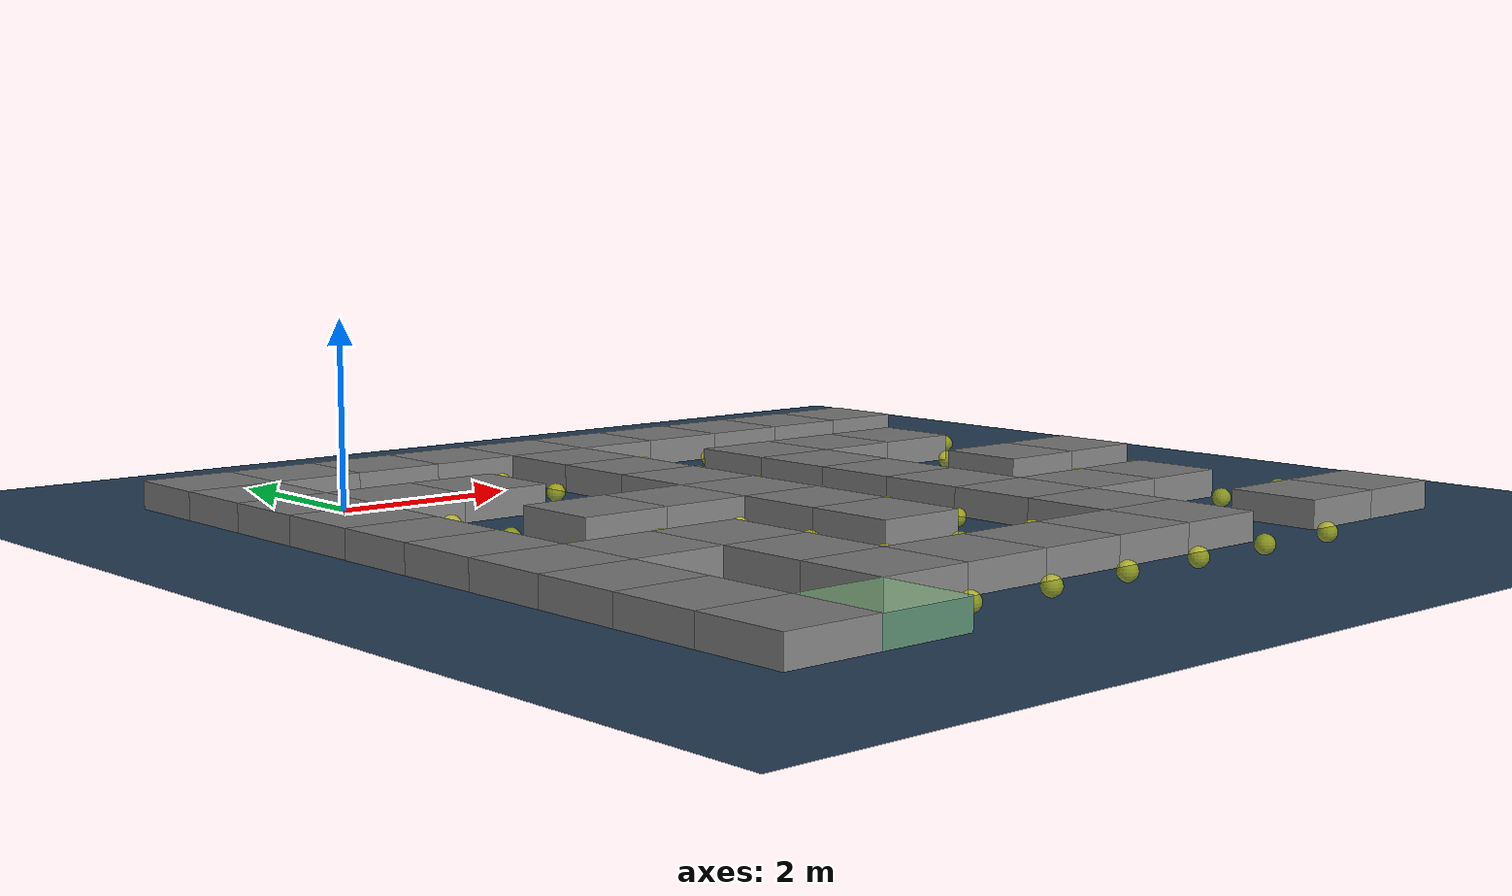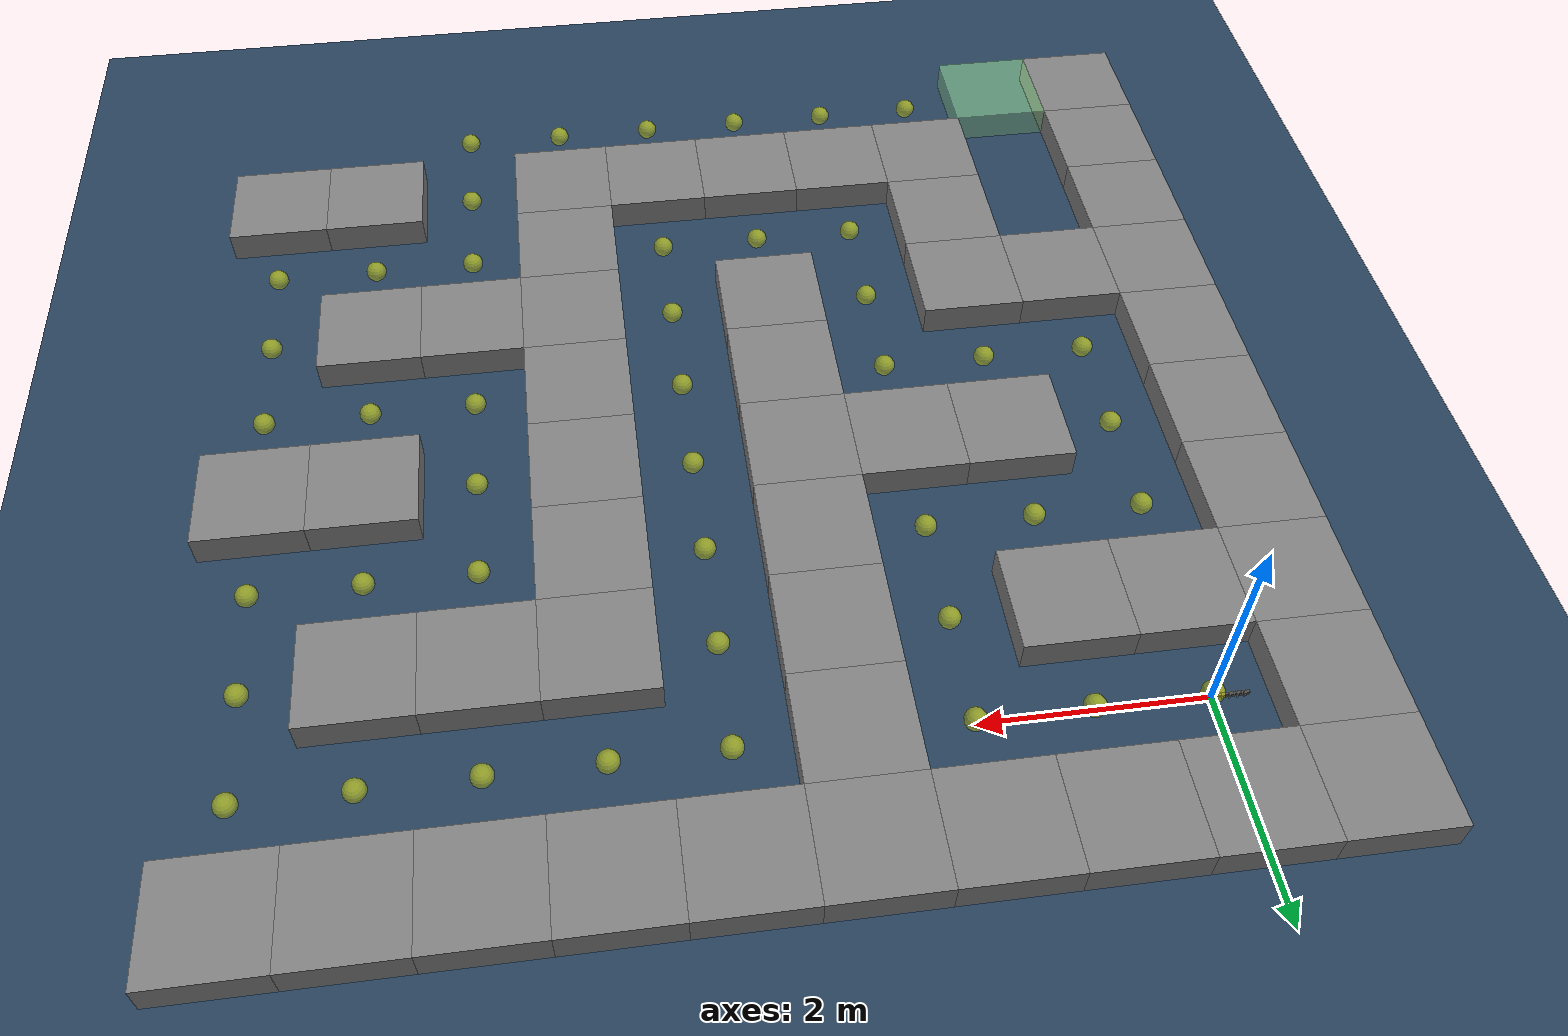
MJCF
<?xml version='1.0' encoding='utf-8'?>
<mujoco model="snake scene">
  <include file="snake.xml" />

  <statistic center="0.3 0 0.4" extent="0.8" />

  <visual>
    <headlight diffuse="0.6 0.6 0.6" ambient="0.1 0.1 0.1" specular="0 0 0" />
    <rgba haze="0.15 0.25 0.35 1" />
    <global azimuth="120" elevation="-20" />
  </visual>

  <asset>
    <texture type="skybox" builtin="gradient" rgb1="0.3 0.5 0.7" rgb2="0 0 0" width="512" height="3072" />
    <texture type="2d" name="groundplane" builtin="checker" mark="edge" rgb1="0.2 0.3 0.4" rgb2="0.1 0.2 0.3" markrgb="0.8 0.8 0.8" width="300" height="300" />
    <material name="groundplane" texture="groundplane" texuniform="true" texrepeat="5 5" reflectance="0.2" />
  </asset>

  <worldbody>
    <light pos="0 0 1.5" dir="0 0 -1" directional="true" />
    <geom name="floor" size="0 0 0.05" type="plane" material="groundplane" />
  <body name="box_0_0" pos="-1.0 1.0 0.15"><geom name="geom_0_0" type="box" size="0.5 0.5 0.15" rgba="0.5 0.5 0.5 1" /></body><body name="box_0_1" pos="0.0 1.0 0.15"><geom name="geom_0_1" type="box" size="0.5 0.5 0.15" rgba="0.5 0.5 0.5 1" /></body><body name="box_0_2" pos="1.0 1.0 0.15"><geom name="geom_0_2" type="box" size="0.5 0.5 0.15" rgba="0.5 0.5 0.5 1" /></body><body name="box_0_3" pos="2.0 1.0 0.15"><geom name="geom_0_3" type="box" size="0.5 0.5 0.15" rgba="0.5 0.5 0.5 1" /></body><body name="box_0_4" pos="3.0 1.0 0.15"><geom name="geom_0_4" type="box" size="0.5 0.5 0.15" rgba="0.5 0.5 0.5 1" /></body><body name="box_0_5" pos="4.0 1.0 0.15"><geom name="geom_0_5" type="box" size="0.5 0.5 0.15" rgba="0.5 0.5 0.5 1" /></body><body name="box_0_6" pos="5.0 1.0 0.15"><geom name="geom_0_6" type="box" size="0.5 0.5 0.15" rgba="0.5 0.5 0.5 1" /></body><body name="box_0_7" pos="6.0 1.0 0.15"><geom name="geom_0_7" type="box" size="0.5 0.5 0.15" rgba="0.5 0.5 0.5 1" /></body><body name="box_0_8" pos="7.0 1.0 0.15"><geom name="geom_0_8" type="box" size="0.5 0.5 0.15" rgba="0.5 0.5 0.5 1" /></body><body name="box_0_9" pos="8.0 1.0 0.15"><geom name="geom_0_9" type="box" size="0.5 0.5 0.15" rgba="0.5 0.5 0.5 1" /></body><body name="box_1_0" pos="-1.0 -0.0 0.15"><geom name="geom_1_0" type="box" size="0.5 0.5 0.15" rgba="0.5 0.5 0.5 1" /></body><body name="box_1_4" pos="3.0 -0.0 0.15"><geom name="geom_1_4" type="box" size="0.5 0.5 0.15" rgba="0.5 0.5 0.5 1" /></body><body name="box_2_0" pos="-1.0 -1.0 0.15"><geom name="geom_2_0" type="box" size="0.5 0.5 0.15" rgba="0.5 0.5 0.5 1" /></body><body name="box_2_1" pos="0.0 -1.0 0.15"><geom name="geom_2_1" type="box" size="0.5 0.5 0.15" rgba="0.5 0.5 0.5 1" /></body><body name="box_2_2" pos="1.0 -1.0 0.15"><geom name="geom_2_2" type="box" size="0.5 0.5 0.15" rgba="0.5 0.5 0.5 1" /></body><body name="box_2_4" pos="3.0 -1.0 0.15"><geom name="geom_2_4" type="box" size="0.5 0.5 0.15" rgba="0.5 0.5 0.5 1" /></body><body name="box_2_6" pos="5.0 -1.0 0.15"><geom name="geom_2_6" type="box" size="0.5 0.5 0.15" rgba="0.5 0.5 0.5 1" /></body><body name="box_2_7" pos="6.0 -1.0 0.15"><geom name="geom_2_7" type="box" size="0.5 0.5 0.15" rgba="0.5 0.5 0.5 1" /></body><body name="box_2_8" pos="7.0 -1.0 0.15"><geom name="geom_2_8" type="box" size="0.5 0.5 0.15" rgba="0.5 0.5 0.5 1" /></body><body name="box_3_0" pos="-1.0 -2.0 0.15"><geom name="geom_3_0" type="box" size="0.5 0.5 0.15" rgba="0.5 0.5 0.5 1" /></body><body name="box_3_4" pos="3.0 -2.0 0.15"><geom name="geom_3_4" type="box" size="0.5 0.5 0.15" rgba="0.5 0.5 0.5 1" /></body><body name="box_3_6" pos="5.0 -2.0 0.15"><geom name="geom_3_6" type="box" size="0.5 0.5 0.15" rgba="0.5 0.5 0.5 1" /></body><body name="box_4_0" pos="-1.0 -3.0 0.15"><geom name="geom_4_0" type="box" size="0.5 0.5 0.15" rgba="0.5 0.5 0.5 1" /></body><body name="box_4_2" pos="1.0 -3.0 0.15"><geom name="geom_4_2" type="box" size="0.5 0.5 0.15" rgba="0.5 0.5 0.5 1" /></body><body name="box_4_3" pos="2.0 -3.0 0.15"><geom name="geom_4_3" type="box" size="0.5 0.5 0.15" rgba="0.5 0.5 0.5 1" /></body><body name="box_4_4" pos="3.0 -3.0 0.15"><geom name="geom_4_4" type="box" size="0.5 0.5 0.15" rgba="0.5 0.5 0.5 1" /></body><body name="box_4_6" pos="5.0 -3.0 0.15"><geom name="geom_4_6" type="box" size="0.5 0.5 0.15" rgba="0.5 0.5 0.5 1" /></body><body name="box_4_8" pos="7.0 -3.0 0.15"><geom name="geom_4_8" type="box" size="0.5 0.5 0.15" rgba="0.5 0.5 0.5 1" /></body><body name="box_4_9" pos="8.0 -3.0 0.15"><geom name="geom_4_9" type="box" size="0.5 0.5 0.15" rgba="0.5 0.5 0.5 1" /></body><body name="box_5_0" pos="-1.0 -4.0 0.15"><geom name="geom_5_0" type="box" size="0.5 0.5 0.15" rgba="0.5 0.5 0.5 1" /></body><body name="box_5_4" pos="3.0 -4.0 0.15"><geom name="geom_5_4" type="box" size="0.5 0.5 0.15" rgba="0.5 0.5 0.5 1" /></body><body name="box_5_6" pos="5.0 -4.0 0.15"><geom name="geom_5_6" type="box" size="0.5 0.5 0.15" rgba="0.5 0.5 0.5 1" /></body><body name="box_6_0" pos="-1.0 -5.0 0.15"><geom name="geom_6_0" type="box" size="0.5 0.5 0.15" rgba="0.5 0.5 0.5 1" /></body><body name="box_6_1" pos="0.0 -5.0 0.15"><geom name="geom_6_1" type="box" size="0.5 0.5 0.15" rgba="0.5 0.5 0.5 1" /></body><body name="box_6_2" pos="1.0 -5.0 0.15"><geom name="geom_6_2" type="box" size="0.5 0.5 0.15" rgba="0.5 0.5 0.5 1" /></body><body name="box_6_4" pos="3.0 -5.0 0.15"><geom name="geom_6_4" type="box" size="0.5 0.5 0.15" rgba="0.5 0.5 0.5 1" /></body><body name="box_6_6" pos="5.0 -5.0 0.15"><geom name="geom_6_6" type="box" size="0.5 0.5 0.15" rgba="0.5 0.5 0.5 1" /></body><body name="box_6_7" pos="6.0 -5.0 0.15"><geom name="geom_6_7" type="box" size="0.5 0.5 0.15" rgba="0.5 0.5 0.5 1" /></body><body name="box_6_8" pos="7.0 -5.0 0.15"><geom name="geom_6_8" type="box" size="0.5 0.5 0.15" rgba="0.5 0.5 0.5 1" /></body><body name="box_7_0" pos="-1.0 -6.0 0.15"><geom name="geom_7_0" type="box" size="0.5 0.5 0.15" rgba="0.5 0.5 0.5 1" /></body><body name="box_7_2" pos="1.0 -6.0 0.15"><geom name="geom_7_2" type="box" size="0.5 0.5 0.15" rgba="0.5 0.5 0.5 1" /></body><body name="box_7_6" pos="5.0 -6.0 0.15"><geom name="geom_7_6" type="box" size="0.5 0.5 0.15" rgba="0.5 0.5 0.5 1" /></body><body name="box_8_0" pos="-1.0 -7.0 0.15"><geom name="geom_8_0" type="box" size="0.5 0.5 0.15" rgba="0.5 0.5 0.5 1" /></body><body name="box_8_2" pos="1.0 -7.0 0.15"><geom name="geom_8_2" type="box" size="0.5 0.5 0.15" rgba="0.5 0.5 0.5 1" /></body><body name="box_8_3" pos="2.0 -7.0 0.15"><geom name="geom_8_3" type="box" size="0.5 0.5 0.15" rgba="0.5 0.5 0.5 1" /></body><body name="box_8_4" pos="3.0 -7.0 0.15"><geom name="geom_8_4" type="box" size="0.5 0.5 0.15" rgba="0.5 0.5 0.5 1" /></body><body name="box_8_5" pos="4.0 -7.0 0.15"><geom name="geom_8_5" type="box" size="0.5 0.5 0.15" rgba="0.5 0.5 0.5 1" /></body><body name="box_8_6" pos="5.0 -7.0 0.15"><geom name="geom_8_6" type="box" size="0.5 0.5 0.15" rgba="0.5 0.5 0.5 1" /></body><body name="box_8_8" pos="7.0 -7.0 0.15"><geom name="geom_8_8" type="box" size="0.5 0.5 0.15" rgba="0.5 0.5 0.5 1" /></body><body name="box_8_9" pos="8.0 -7.0 0.15"><geom name="geom_8_9" type="box" size="0.5 0.5 0.15" rgba="0.5 0.5 0.5 1" /></body><body name="box_9_0" pos="-1.0 -8.0 0.15"><geom name="geom_9_0" type="box" size="0.5 0.5 0.15" rgba="0.5 0.5 0.5 1" /></body><geom name="waypoint_0" type="sphere" size="0.1" pos="0.0 -0.0 0.1" rgba="1 1 0 0.5" contype="0" conaffinity="0" /><geom name="waypoint_1" type="sphere" size="0.1" pos="1.0 -0.0 0.1" rgba="1 1 0 0.5" contype="0" conaffinity="0" /><geom name="waypoint_2" type="sphere" size="0.1" pos="2.0 -0.0 0.1" rgba="1 1 0 0.5" contype="0" conaffinity="0" /><geom name="waypoint_3" type="sphere" size="0.1" pos="2.0 -1.0 0.1" rgba="1 1 0 0.5" contype="0" conaffinity="0" /><geom name="waypoint_4" type="sphere" size="0.1" pos="2.0 -2.0 0.1" rgba="1 1 0 0.5" contype="0" conaffinity="0" /><geom name="waypoint_5" type="sphere" size="0.1" pos="1.0 -2.0 0.1" rgba="1 1 0 0.5" contype="0" conaffinity="0" /><geom name="waypoint_6" type="sphere" size="0.1" pos="0.0 -2.0 0.1" rgba="1 1 0 0.5" contype="0" conaffinity="0" /><geom name="waypoint_7" type="sphere" size="0.1" pos="0.0 -3.0 0.1" rgba="1 1 0 0.5" contype="0" conaffinity="0" /><geom name="waypoint_8" type="sphere" size="0.1" pos="0.0 -4.0 0.1" rgba="1 1 0 0.5" contype="0" conaffinity="0" /><geom name="waypoint_9" type="sphere" size="0.1" pos="1.0 -4.0 0.1" rgba="1 1 0 0.5" contype="0" conaffinity="0" /><geom name="waypoint_10" type="sphere" size="0.1" pos="2.0 -4.0 0.1" rgba="1 1 0 0.5" contype="0" conaffinity="0" /><geom name="waypoint_11" type="sphere" size="0.1" pos="2.0 -5.0 0.1" rgba="1 1 0 0.5" contype="0" conaffinity="0" /><geom name="waypoint_12" type="sphere" size="0.1" pos="2.0 -6.0 0.1" rgba="1 1 0 0.5" contype="0" conaffinity="0" /><geom name="waypoint_13" type="sphere" size="0.1" pos="3.0 -6.0 0.1" rgba="1 1 0 0.5" contype="0" conaffinity="0" /><geom name="waypoint_14" type="sphere" size="0.1" pos="4.0 -6.0 0.1" rgba="1 1 0 0.5" contype="0" conaffinity="0" /><geom name="waypoint_15" type="sphere" size="0.1" pos="4.0 -5.0 0.1" rgba="1 1 0 0.5" contype="0" conaffinity="0" /><geom name="waypoint_16" type="sphere" size="0.1" pos="4.0 -4.0 0.1" rgba="1 1 0 0.5" contype="0" conaffinity="0" /><geom name="waypoint_17" type="sphere" size="0.1" pos="4.0 -3.0 0.1" rgba="1 1 0 0.5" contype="0" conaffinity="0" /><geom name="waypoint_18" type="sphere" size="0.1" pos="4.0 -2.0 0.1" rgba="1 1 0 0.5" contype="0" conaffinity="0" /><geom name="waypoint_19" type="sphere" size="0.1" pos="4.0 -1.0 0.1" rgba="1 1 0 0.5" contype="0" conaffinity="0" /><geom name="waypoint_20" type="sphere" size="0.1" pos="4.0 -0.0 0.1" rgba="1 1 0 0.5" contype="0" conaffinity="0" /><geom name="waypoint_21" type="sphere" size="0.1" pos="5.0 -0.0 0.1" rgba="1 1 0 0.5" contype="0" conaffinity="0" /><geom name="waypoint_22" type="sphere" size="0.1" pos="6.0 -0.0 0.1" rgba="1 1 0 0.5" contype="0" conaffinity="0" /><geom name="waypoint_23" type="sphere" size="0.1" pos="7.0 -0.0 0.1" rgba="1 1 0 0.5" contype="0" conaffinity="0" /><geom name="waypoint_24" type="sphere" size="0.1" pos="8.0 -0.0 0.1" rgba="1 1 0 0.5" contype="0" conaffinity="0" /><geom name="waypoint_25" type="sphere" size="0.1" pos="8.0 -1.0 0.1" rgba="1 1 0 0.5" contype="0" conaffinity="0" /><geom name="waypoint_26" type="sphere" size="0.1" pos="8.0 -2.0 0.1" rgba="1 1 0 0.5" contype="0" conaffinity="0" /><geom name="waypoint_27" type="sphere" size="0.1" pos="7.0 -2.0 0.1" rgba="1 1 0 0.5" contype="0" conaffinity="0" /><geom name="waypoint_28" type="sphere" size="0.1" pos="6.0 -2.0 0.1" rgba="1 1 0 0.5" contype="0" conaffinity="0" /><geom name="waypoint_29" type="sphere" size="0.1" pos="6.0 -3.0 0.1" rgba="1 1 0 0.5" contype="0" conaffinity="0" /><geom name="waypoint_30" type="sphere" size="0.1" pos="6.0 -4.0 0.1" rgba="1 1 0 0.5" contype="0" conaffinity="0" /><geom name="waypoint_31" type="sphere" size="0.1" pos="7.0 -4.0 0.1" rgba="1 1 0 0.5" contype="0" conaffinity="0" /><geom name="waypoint_32" type="sphere" size="0.1" pos="8.0 -4.0 0.1" rgba="1 1 0 0.5" contype="0" conaffinity="0" /><geom name="waypoint_33" type="sphere" size="0.1" pos="8.0 -5.0 0.1" rgba="1 1 0 0.5" contype="0" conaffinity="0" /><geom name="waypoint_34" type="sphere" size="0.1" pos="8.0 -6.0 0.1" rgba="1 1 0 0.5" contype="0" conaffinity="0" /><geom name="waypoint_35" type="sphere" size="0.1" pos="7.0 -6.0 0.1" rgba="1 1 0 0.5" contype="0" conaffinity="0" /><geom name="waypoint_36" type="sphere" size="0.1" pos="6.0 -6.0 0.1" rgba="1 1 0 0.5" contype="0" conaffinity="0" /><geom name="waypoint_37" type="sphere" size="0.1" pos="6.0 -7.0 0.1" rgba="1 1 0 0.5" contype="0" conaffinity="0" /><geom name="waypoint_38" type="sphere" size="0.1" pos="6.0 -8.0 0.1" rgba="1 1 0 0.5" contype="0" conaffinity="0" /><geom name="waypoint_39" type="sphere" size="0.1" pos="5.0 -8.0 0.1" rgba="1 1 0 0.5" contype="0" conaffinity="0" /><geom name="waypoint_40" type="sphere" size="0.1" pos="4.0 -8.0 0.1" rgba="1 1 0 0.5" contype="0" conaffinity="0" /><geom name="waypoint_41" type="sphere" size="0.1" pos="3.0 -8.0 0.1" rgba="1 1 0 0.5" contype="0" conaffinity="0" /><geom name="waypoint_42" type="sphere" size="0.1" pos="2.0 -8.0 0.1" rgba="1 1 0 0.5" contype="0" conaffinity="0" /><geom name="waypoint_43" type="sphere" size="0.1" pos="1.0 -8.0 0.1" rgba="1 1 0 0.5" contype="0" conaffinity="0" /><geom name="waypoint_44" type="sphere" size="0.1" pos="0.0 -8.0 0.1" rgba="1 1 0 0.5" contype="0" conaffinity="0" /><body name="goal" pos="0.0 -8.0 0.15"><geom name="goal_geom" type="box" size="0.5 0.5 0.15" contype="0" conaffinity="0" rgba="0.6 0.9 0.6 0.5" /></body></worldbody>

</mujoco>

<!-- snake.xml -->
<mujoco model="snake">
  <compiler angle="radian" meshdir="assets" autolimits="true"/>

  <option integrator="implicitfast"/>

  <default>
    <geom friction="3 0.005 0.0001" />
  </default>
  <asset>
    <!-- ナシ -->
  </asset>
  <worldbody>
    <light name="spotlight" mode="targetbodycom" target="frame_0-1" pos="0 -1 2"/>

    <!--  ================= SNAKE ================= /-->
    <body name="frame_0-1" pos="0.5 0 0" quat="0 0 0 1">
      <camera name="track" mode="trackcom" pos="0.5 1 1" xyaxes="-1 0 0 0 -1 1"/>
      <joint type="free"/>
      <geom density="1000" type="box" size=".0235 .014 .01675" pos= ".0235 0 .02675 " rgba="0.3 0.3 0.3 1"  /><!--motor box(head)-->
      <geom density="1000" type="box" size=".0075 .00275 .021" pos= ".0075 -.01675 .0225 " rgba="0.5 0.5 0.5 1" /><!--side box-->
      <geom density="1000" type="box" size=".0075 .00275 .021" pos= ".0075 .01675 .0225 " rgba="0.5 0.5 0.5 1" /><!--side box-->

      <body name="frame0-2" pos="0.5 0 0"  >
      <joint  pos=".0075 -.014 .0035" axis="0 1 0" limited="false" /><!--wheel joint-->
      <geom density="1000" type="cylinder" size=".0035" fromto= ".0075 -.014 .0035 .0075 -.012 .0035" rgba="0.3 0.3 0.3 1" /><!--Left wheel-->
      <geom density="1000" type="cylinder" size=".0035" fromto= ".0075 .014 .0035 .0075 .012 .0035" rgba="0.3 0.3 0.3 1" /><!--Right wheel-->
      <geom density="1000" type="cylinder" size=".001" fromto= ".0075 -.012 .0035 .0075 .012 .0035" rgba="0.3 0.3 0.3 1" /><!--wheel axle-->
      </body>

      <body name="frame1_1" pos="0.035 0 0"  >
        <joint name="Actuator1" pos="0 0 0" axis="0 0 1" limited="true" range="-3 3"/>
        <geom density="1000" type="box" size=".015 .01 .0001" pos= ".015 0 .04355 " rgba="0.3 0.3 0.3 1" /><!--connecter-->
        <geom density="1000" type="box" size=".015 .01 .0001" pos= ".015 0 .00905 " rgba="0.3 0.3 0.3 1" /><!--connecter-->
        <geom density="1000" type="box" size=".001 .01 .01675" pos= ".029 0 .02675 " rgba="0.3 0.3 0.3 1" /><!--connecter-->
        <geom density="1000" type="box" size=".0235 .014 .01675" pos= ".0535 0 .02675 " rgba="0.3 0.3 0.3 1" /><!--motor box-->
        <geom density="1000" type="box" size=".0075 .00275 .021" pos= ".0375 -.01675 .0225 " rgba="0.5 0.5 0.5 1" /><!--side box-->
        <geom density="1000" type="box" size=".0075 .00275 .021" pos= ".0375 .01675 .0225 " rgba="0.5 0.5 0.5 1" /><!--side box-->

        <body name="frame1-2" pos="0.03 0 0"  >
        <joint  pos=".0075 -.014 .0035" axis="0 1 0" limited="false" />
        <geom density="1000" type="cylinder" size=".0035" fromto= ".0075 -.014 .0035 .0075 -.012 .0035" rgba="0.3 0.3 0.3 1" /><!--Left wheel-->
        <geom density="1000" type="cylinder" size=".0035" fromto= ".0075 .014 .0035 .0075 .012 .0035" rgba="0.3 0.3 0.3 1" /><!--Right wheel-->
        <geom density="1000" type="cylinder" size=".001" fromto= ".0075 -.012 .0035 .0075 .012 .0035" rgba="0.3 0.3 0.3 1" /><!--wheel axle-->
        </body>

        <body name="frame2_1" pos="0.065 0 0"  >
          <joint name="Actuator2" pos="0 0 0" axis="0 0 1" limited="true" range="-3 3"/>
          <geom density="1000" type="box" size=".015 .01 .0001" pos= ".015 0 .04355 " rgba="0.3 0.3 0.3 1" /><!--connecter-->
          <geom density="1000" type="box" size=".015 .01 .0001" pos= ".015 0 .00905 " rgba="0.3 0.3 0.3 1" /><!--connecter-->
          <geom density="1000" type="box" size=".001 .01 .01675" pos= ".029 0 .02675 " rgba="0.3 0.3 0.3 1" /><!--connecter-->
          <geom density="1000" type="box" size=".0235 .014 .01675" pos= ".0535 0 .02675 " rgba="0.3 0.3 0.3 1" /><!--motor box-->
          <geom density="1000" type="box" size=".0075 .00275 .021" pos= ".0375 -.01675 .0225 " rgba="0.5 0.5 0.5 1" /><!--side box-->
          <geom density="1000" type="box" size=".0075 .00275 .021" pos= ".0375 .01675 .0225 " rgba="0.5 0.5 0.5 1" /><!--side box-->

          <body name="frame2-2" pos="0.03 0 0"  >
          <joint  pos=".0075 -.014 .0035" axis="0 1 0" limited="false" />
          <geom density="1000" type="cylinder" size=".0035" fromto= ".0075 -.014 .0035 .0075 -.012 .0035" rgba="0.3 0.3 0.3 1" /><!--Left wheel-->
          <geom density="1000" type="cylinder" size=".0035" fromto= ".0075 .014 .0035 .0075 .012 .0035" rgba="0.3 0.3 0.3 1" /><!--Right wheel-->
          <geom density="1000" type="cylinder" size=".001" fromto= ".0075 -.012 .0035 .0075 .012 .0035" rgba="0.3 0.3 0.3 1" /><!--wheel axle-->
          </body>

          <body name="frame3_1" pos="0.065 0 0"  >
            <joint name="Actuator3" pos="0 0 0" axis="0 0 1" limited="true" range="-3 3"/>
            <geom density="1000" type="box" size=".015 .01 .0001" pos= ".015 0 .04355 " rgba="0.3 0.3 0.3 1" /><!--connecter-->
            <geom density="1000" type="box" size=".015 .01 .0001" pos= ".015 0 .00905 " rgba="0.3 0.3 0.3 1" /><!--connecter-->
            <geom density="1000" type="box" size=".001 .01 .01675" pos= ".029 0 .02675 " rgba="0.3 0.3 0.3 1" /><!--connecter-->
            <geom density="1000" type="box" size=".0235 .014 .01675" pos= ".0535 0 .02675 " rgba="0.3 0.3 0.3 1" /><!--motor box-->
            <geom density="1000" type="box" size=".0075 .00275 .021" pos= ".0375 -.01675 .0225 " rgba="0.5 0.5 0.5 1" /><!--side box-->
            <geom density="1000" type="box" size=".0075 .00275 .021" pos= ".0375 .01675 .0225 " rgba="0.5 0.5 0.5 1" /><!--side box-->

            <body name="frame3-2" pos="0.03 0 0"  >
            <joint  pos=".0075 -.014 .0035" axis="0 1 0" limited="false" />
            <geom density="1000" type="cylinder" size=".0035" fromto= ".0075 -.014 .0035 .0075 -.012 .0035" rgba="0.3 0.3 0.3 1" /><!--Left wheel-->
            <geom density="1000" type="cylinder" size=".0035" fromto= ".0075 .014 .0035 .0075 .012 .0035" rgba="0.3 0.3 0.3 1" /><!--Right wheel-->
            <geom density="1000" type="cylinder" size=".001" fromto= ".0075 -.012 .0035 .0075 .012 .0035" rgba="0.3 0.3 0.3 1" /><!--wheel axle-->
            </body>

            <body name="frame4_1" pos="0.065 0 0"  >
              <joint name="Actuator4" pos="0 0 0" axis="0 0 1" limited="true" range="-3 3"/>
              <geom density="1000" type="box" size=".015 .01 .0001" pos= ".015 0 .04355 " rgba="0.3 0.3 0.3 1" /><!--connecter-->
              <geom density="1000" type="box" size=".015 .01 .0001" pos= ".015 0 .00905 " rgba="0.3 0.3 0.3 1" /><!--connecter-->
              <geom density="1000" type="box" size=".001 .01 .01675" pos= ".029 0 .02675 " rgba="0.3 0.3 0.3 1" /><!--connecter-->
              <geom density="1000" type="box" size=".0235 .014 .01675" pos= ".0535 0 .02675 " rgba="0.3 0.3 0.3 1" /><!--motor box-->
              <geom density="1000" type="box" size=".0075 .00275 .021" pos= ".0375 -.01675 .0225 " rgba="0.5 0.5 0.5 1" /><!--side box-->
              <geom density="1000" type="box" size=".0075 .00275 .021" pos= ".0375 .01675 .0225 " rgba="0.5 0.5 0.5 1" /><!--side box-->

              <body name="frame4-2" pos="0.03 0 0"  >
              <joint  pos=".0075 -.014 .0035" axis="0 1 0" limited="false" />
              <geom density="1000" type="cylinder" size=".0035" fromto= ".0075 -.014 .0035 .0075 -.012 .0035" rgba="0.3 0.3 0.3 1" /><!--Left wheel-->
              <geom density="1000" type="cylinder" size=".0035" fromto= ".0075 .014 .0035 .0075 .012 .0035" rgba="0.3 0.3 0.3 1" /><!--Right wheel-->
              <geom density="1000" type="cylinder" size=".001" fromto= ".0075 -.012 .0035 .0075 .012 .0035" rgba="0.3 0.3 0.3 1" /><!--wheel axle-->
              </body>

              <body name="frame5_1" pos="0.065 0 0"  >
                <joint name="Actuator5" pos="0 0 0" axis="0 0 1" limited="true" range="-3 3"/>
                <geom density="1000" type="box" size=".015 .01 .0001" pos= ".015 0 .04355 " rgba="0.3 0.3 0.3 1" /><!--connecter-->
                <geom density="1000" type="box" size=".015 .01 .0001" pos= ".015 0 .00905 " rgba="0.3 0.3 0.3 1" /><!--connecter-->
                <geom density="1000" type="box" size=".001 .01 .01675" pos= ".029 0 .02675 " rgba="0.3 0.3 0.3 1" /><!--connecter-->
                <geom density="1000" type="box" size=".0235 .014 .01675" pos= ".0535 0 .02675 " rgba="0.3 0.3 0.3 1" /><!--motor box-->
                <geom density="1000" type="box" size=".0075 .00275 .021" pos= ".0375 -.01675 .0225 " rgba="0.5 0.5 0.5 1" /><!--side box-->
                <geom density="1000" type="box" size=".0075 .00275 .021" pos= ".0375 .01675 .0225 " rgba="0.5 0.5 0.5 1" /><!--side box-->

                <body name="frame5-2" pos="0.03 0 0"  >
                <joint  pos=".0075 -.014 .0035" axis="0 1 0" limited="false" />
                <geom density="1000" type="cylinder" size=".0035" fromto= ".0075 -.014 .0035 .0075 -.012 .0035" rgba="0.3 0.3 0.3 1" /><!--Left wheel-->
                <geom density="1000" type="cylinder" size=".0035" fromto= ".0075 .014 .0035 .0075 .012 .0035" rgba="0.3 0.3 0.3 1" /><!--Right wheel-->
                <geom density="1000" type="cylinder" size=".001" fromto= ".0075 -.012 .0035 .0075 .012 .0035" rgba="0.3 0.3 0.3 1" /><!--wheel axle-->
                </body>

                <body name="frame6_1" pos="0.065 0 0"  >
                  <joint name="Actuator6" pos="0 0 0" axis="0 0 1" limited="true" range="-3 3"/>
                  <geom density="1000" type="box" size=".015 .01 .0001" pos= ".015 0 .04355 " rgba="0.3 0.3 0.3 1" /><!--connecter-->
                  <geom density="1000" type="box" size=".015 .01 .0001" pos= ".015 0 .00905 " rgba="0.3 0.3 0.3 1" /><!--connecter-->
                  <geom density="1000" type="box" size=".001 .01 .01675" pos= ".029 0 .02675 " rgba="0.3 0.3 0.3 1" /><!--connecter-->
                  <geom density="1000" type="box" size=".0235 .014 .01675" pos= ".0535 0 .02675 " rgba="0.3 0.3 0.3 1" /><!--motor box-->
                  <geom density="1000" type="box" size=".0075 .00275 .021" pos= ".0375 -.01675 .0225 " rgba="0.5 0.5 0.5 1" /><!--side box-->
                  <geom density="1000" type="box" size=".0075 .00275 .021" pos= ".0375 .01675 .0225 " rgba="0.5 0.5 0.5 1" /><!--side box-->

                  <body name="frame6-2" pos="0.03 0 0"  >
                  <joint  pos=".0075 -.014 .0035" axis="0 1 0" limited="false" />
                  <geom density="1000" type="cylinder" size=".0035" fromto= ".0075 -.014 .0035 .0075 -.012 .0035" rgba="0.3 0.3 0.3 1" /><!--Left wheel-->
                  <geom density="1000" type="cylinder" size=".0035" fromto= ".0075 .014 .0035 .0075 .012 .0035" rgba="0.3 0.3 0.3 1" /><!--Right wheel-->
                  <geom density="1000" type="cylinder" size=".001" fromto= ".0075 -.012 .0035 .0075 .012 .0035" rgba="0.3 0.3 0.3 1" /><!--wheel axle-->
                  </body>

                  <body name="frame7_1" pos="0.065 0 0"  >
                    <joint name="Actuator7" pos="0 0 0" axis="0 0 1" limited="true" range="-3 3"/>
                    <geom density="1000" type="box" size=".015 .01 .0001" pos= ".015 0 .04355 " rgba="0.3 0.3 0.3 1" /><!--connecter-->
                    <geom density="1000" type="box" size=".015 .01 .0001" pos= ".015 0 .00905 " rgba="0.3 0.3 0.3 1" /><!--connecter-->
                    <geom density="1000" type="box" size=".001 .01 .01675" pos= ".029 0 .02675 " rgba="0.3 0.3 0.3 1" /><!--connecter-->
                    <geom density="1000" type="box" size=".0235 .014 .01675" pos= ".0535 0 .02675 " rgba="0.3 0.3 0.3 1" /><!--motor box-->
                    <geom density="1000" type="box" size=".0075 .00275 .021" pos= ".0375 -.01675 .0225 " rgba="0.5 0.5 0.5 1" /><!--side box-->
                    <geom density="1000" type="box" size=".0075 .00275 .021" pos= ".0375 .01675 .0225 " rgba="0.5 0.5 0.5 1" /><!--side box-->

                    <body name="frame7-2" pos="0.03 0 0"  >
                    <joint  pos=".0075 -.014 .0035" axis="0 1 0" limited="false" />
                    <geom density="1000" type="cylinder" size=".0035" fromto= ".0075 -.014 .0035 .0075 -.012 .0035" rgba="0.3 0.3 0.3 1" /><!--Left wheel-->
                    <geom density="1000" type="cylinder" size=".0035" fromto= ".0075 .014 .0035 .0075 .012 .0035" rgba="0.3 0.3 0.3 1" /><!--Right wheel-->
                    <geom density="1000" type="cylinder" size=".001" fromto= ".0075 -.012 .0035 .0075 .012 .0035" rgba="0.3 0.3 0.3 1" /><!--wheel axle-->
                    </body>

                    <body name="frame8_1" pos="0.065 0 0"  >
                      <joint name="Actuator8" pos="0 0 0" axis="0 0 1" limited="true" range="-3 3"/>
                      <geom density="1000" type="box" size=".015 .01 .0001" pos= ".015 0 .04355 " rgba="0.3 0.3 0.3 1" /><!--connecter-->
                      <geom density="1000" type="box" size=".015 .01 .0001" pos= ".015 0 .00905 " rgba="0.3 0.3 0.3 1" /><!--connecter-->
                      <geom density="1000" type="box" size=".001 .01 .01675" pos= ".029 0 .02675 " rgba="0.3 0.3 0.3 1" /><!--connecter-->
                      <geom density="1000" type="box" size=".0235 .014 .01675" pos= ".0535 0 .02675 " rgba="0.3 0.3 0.3 1" /><!--motor box-->
                      <geom density="1000" type="box" size=".0075 .00275 .021" pos= ".0375 -.01675 .0225 " rgba="0.5 0.5 0.5 1" /><!--side box-->
                      <geom density="1000" type="box" size=".0075 .00275 .021" pos= ".0375 .01675 .0225 " rgba="0.5 0.5 0.5 1" /><!--side box-->

                      <body name="frame8-2" pos="0.03 0 0"  >
                      <joint  pos=".0075 -.014 .0035" axis="0 1 0" limited="false" />
                      <geom density="1000" type="cylinder" size=".0035" fromto= ".0075 -.014 .0035 .0075 -.012 .0035" rgba="0.3 0.3 0.3 1" /><!--Left wheel-->
                      <geom density="1000" type="cylinder" size=".0035" fromto= ".0075 .014 .0035 .0075 .012 .0035" rgba="0.3 0.3 0.3 1" /><!--Right wheel-->
                      <geom density="1000" type="cylinder" size=".001" fromto= ".0075 -.012 .0035 .0075 .012 .0035" rgba="0.3 0.3 0.3 1" /><!--wheel axle-->
                      </body>

                      <body name="frame9_1" pos="0.065 0 0"  >
                        <joint name="Actuator9" pos="0 0 0" axis="0 0 1" limited="true" range="-3 3"/>
                        <geom density="1000" type="box" size=".015 .01 .0001" pos= ".015 0 .04355 " rgba="0.3 0.3 0.3 1" /><!--connecter-->
                        <geom density="1000" type="box" size=".015 .01 .0001" pos= ".015 0 .00905 " rgba="0.3 0.3 0.3 1" /><!--connecter-->
                        <geom density="1000" type="box" size=".001 .01 .01675" pos= ".029 0 .02675 " rgba="0.3 0.3 0.3 1" /><!--connecter-->
                        <geom density="1000" type="box" size=".0235 .014 .01675" pos= ".0535 0 .02675 " rgba="0.3 0.3 0.3 1" /><!--motor box-->
                        <geom density="1000" type="box" size=".0075 .00275 .021" pos= ".0375 -.01675 .0225 " rgba="0.5 0.5 0.5 1" /><!--side box-->
                        <geom density="1000" type="box" size=".0075 .00275 .021" pos= ".0375 .01675 .0225 " rgba="0.5 0.5 0.5 1" /><!--side box-->

                        <body name="frame9-2" pos="0.03 0 0 " >
                        <joint  pos=".0075 -.014 .0035" axis="0 1 0" limited="false" />
                        <geom density="1000" type="cylinder" size=".0035" fromto= ".0075 -.014 .0035 .0075 -.012 .0035" rgba="0.3 0.3 0.3 1" /><!--Left wheel-->
                        <geom density="1000" type="cylinder" size=".0035" fromto= ".0075 .014 .0035 .0075 .012 .0035" rgba="0.3 0.3 0.3 1" /><!--Right wheel-->
                        <geom density="1000" type="cylinder" size=".001" fromto= ".0075 -.012 .0035 .0075 .012 .0035" rgba="0.3 0.3 0.3 1" /><!--wheel axle-->
                        </body>

                        <body name="frame10_1" pos="0.065 0 0"  >
                          <joint name="Actuator10" pos="0 0 0" axis="0 0 1" limited="true" range="-3 3"/>
                          <geom density="1000" type="box" size=".015 .01 .0001" pos= ".015 0 .04355 " rgba="0.3 0.3 0.3 1" /><!--connecter-->
                          <geom density="1000" type="box" size=".015 .01 .0001" pos= ".015 0 .00905 " rgba="0.3 0.3 0.3 1" /><!--connecter-->
                          <geom density="1000" type="box" size=".001 .01 .01675" pos= ".029 0 .02675 " rgba="0.3 0.3 0.3 1" /><!--connecter-->
                          <geom density="1000" type="box" size=".0235 .014 .01675" pos= ".0535 0 .02675 " rgba="0.3 0.3 0.3 1" /><!--motor box-->
                          <geom density="1000" type="box" size=".0075 .00275 .021" pos= ".0375 -.01675 .0225 " rgba="0.5 0.5 0.5 1" /><!--side box-->
                          <geom density="1000" type="box" size=".0075 .00275 .021" pos= ".0375 .01675 .0225 " rgba="0.5 0.5 0.5 1" /><!--side box-->

                          <body name="frame10-2" pos="0.03 0 0"  >
                          <joint  pos=".0075 -.014 .0035" axis="0 1 0" limited="false" />
                          <geom density="1000" type="cylinder" size=".0035" fromto= ".0075 -.014 .0035 .0075 -.012 .0035" rgba="0.3 0.3 0.3 1" /><!--Left wheel-->
                          <geom density="1000" type="cylinder" size=".0035" fromto= ".0075 .014 .0035 .0075 .012 .0035" rgba="0.3 0.3 0.3 1" /><!--Right wheel-->
                          <geom density="1000" type="cylinder" size=".001" fromto= ".0075 -.012 .0035 .0075 .012 .0035" rgba="0.3 0.3 0.3 1" /><!--wheel axle-->
                          </body>

                          <body name="frame11_1" pos="0.065 0 0"  >
                            <joint name="Actuator11" pos="0 0 0" axis="0 0 1" limited="true" range="-3 3"/>
                            <geom density="1000" type="box" size=".015 .01 .0001" pos= ".015 0 .04355 " rgba="0.3 0.3 0.3 1" /><!--connecter-->
                            <geom density="1000" type="box" size=".015 .01 .0001" pos= ".015 0 .00905 " rgba="0.3 0.3 0.3 1" /><!--connecter-->
                            <geom density="1000" type="box" size=".001 .01 .01675" pos= ".029 0 .02675 " rgba="0.3 0.3 0.3 1" /><!--connecter-->
                            <geom density="1000" type="box" size=".0235 .014 .01675" pos= ".0535 0 .02675 " rgba="0.3 0.3 0.3 1" /><!--motor box-->
                            <geom density="1000" type="box" size=".0075 .00275 .021" pos= ".0375 -.01675 .0225 " rgba="0.5 0.5 0.5 1" /><!--side box-->
                            <geom density="1000" type="box" size=".0075 .00275 .021" pos= ".0375 .01675 .0225 " rgba="0.5 0.5 0.5 1" /><!--side box-->

                            <body name="frame11-2" pos="0.03 0 0"  >
                            <joint  pos=".0075 -.014 .0035" axis="0 1 0" limited="false" />
                            <geom density="1000" type="cylinder" size=".0035" fromto= ".0075 -.014 .0035 .0075 -.012 .0035" rgba="0.3 0.3 0.3 1" /><!--Left wheel-->
                            <geom density="1000" type="cylinder" size=".0035" fromto= ".0075 .014 .0035 .0075 .012 .0035" rgba="0.3 0.3 0.3 1" /><!--Right wheel-->
                            <geom density="1000" type="cylinder" size=".001" fromto= ".0075 -.012 .0035 .0075 .012 .0035" rgba="0.3 0.3 0.3 1" /><!--wheel axle-->
                            </body>

                            <body name="frame12_1" pos="0.065 0 0"  >
                              <joint name="Actuator12" pos="0 0 0" axis="0 0 1" limited="true" range="-3 3"/>
                              <geom density="1000" type="box" size=".015 .01 .0001" pos= ".015 0 .04355 " rgba="0.3 0.3 0.3 1" /><!--connecter-->
                              <geom density="1000" type="box" size=".015 .01 .0001" pos= ".015 0 .00905 " rgba="0.3 0.3 0.3 1" /><!--connecter-->
                              <geom density="1000" type="box" size=".001 .01 .01675" pos= ".029 0 .02675 " rgba="0.3 0.3 0.3 1" /><!--connecter-->
                              <geom density="1000" type="box" size=".0235 .014 .01675" pos= ".0535 0 .02675 " rgba="0.3 0.3 0.3 1" /><!--motor box-->
                              <geom density="1000" type="box" size=".0075 .00275 .021" pos= ".0375 -.01675 .0225 " rgba="0.5 0.5 0.5 1" /><!--side box-->
                              <geom density="1000" type="box" size=".0075 .00275 .021" pos= ".0375 .01675 .0225 " rgba="0.5 0.5 0.5 1" /><!--side box-->

                              <body name="frame12-2" pos="0.03 0 0" >
                              <joint  pos=".0075 -.014 .0035" axis="0 1 0" limited="false" />
                              <geom density="1000" type="cylinder" size=".0035" fromto= ".0075 -.014 .0035 .0075 -.012 .0035" rgba="0.3 0.3 0.3 1" /><!--Left wheel-->
                              <geom density="1000" type="cylinder" size=".0035" fromto= ".0075 .014 .0035 .0075 .012 .0035" rgba="0.3 0.3 0.3 1" /><!--Right wheel-->
                              <geom density="1000" type="cylinder" size=".001" fromto= ".0075 -.012 .0035 .0075 .012 .0035" rgba="0.3 0.3 0.3 1" /><!--wheel axle-->
                              </body>
                            </body>
                          </body>
                        </body>
                      </body>
                    </body>
                  </body>
                </body>
              </body>
            </body>
          </body>
        </body>
      </body>
    </body>
  </worldbody>

  <actuator>
    <position name="Actuator1" joint="Actuator1" kp = "5" kv = "0.4" ctrllimited="true" ctrlrange="-3 3"/>
    <position name="Actuator2" joint="Actuator2" kp = "5" kv = "0.4" ctrllimited="true" ctrlrange="-3 3"/>
    <position name="Actuator3" joint="Actuator3" kp = "5" kv = "0.4" ctrllimited="true" ctrlrange="-3 3"/>
    <position name="Actuator4" joint="Actuator4" kp = "5" kv = "0.4" ctrllimited="true" ctrlrange="-3 3"/>
    <position name="Actuator5" joint="Actuator5" kp = "5" kv = "0.4" ctrllimited="true" ctrlrange="-3 3"/>
    <position name="Actuator6" joint="Actuator6" kp = "5" kv = "0.4" ctrllimited="true" ctrlrange="-3 3"/>
    <position name="Actuator7" joint="Actuator7" kp = "5" kv = "0.4" ctrllimited="true" ctrlrange="-3 3"/>
    <position name="Actuator8" joint="Actuator8" kp = "5" kv = "0.4" ctrllimited="true" ctrlrange="-3 3"/>
    <position name="Actuator9" joint="Actuator9" kp = "5" kv = "0.4" ctrllimited="true" ctrlrange="-3 3"/>
    <position name="Actuator10" joint="Actuator10" kp = "5" kv = "0.4" ctrllimited="true" ctrlrange="-3 3"/>
    <position name="Actuator11" joint="Actuator11" kp = "5" kv = "0.4" ctrllimited="true" ctrlrange="-3 3"/>
    <position name="Actuator12" joint="Actuator12" kp = "5" kv = "0.4" ctrllimited="true" ctrlrange="-3 3"/>
  </actuator>
</mujoco>
